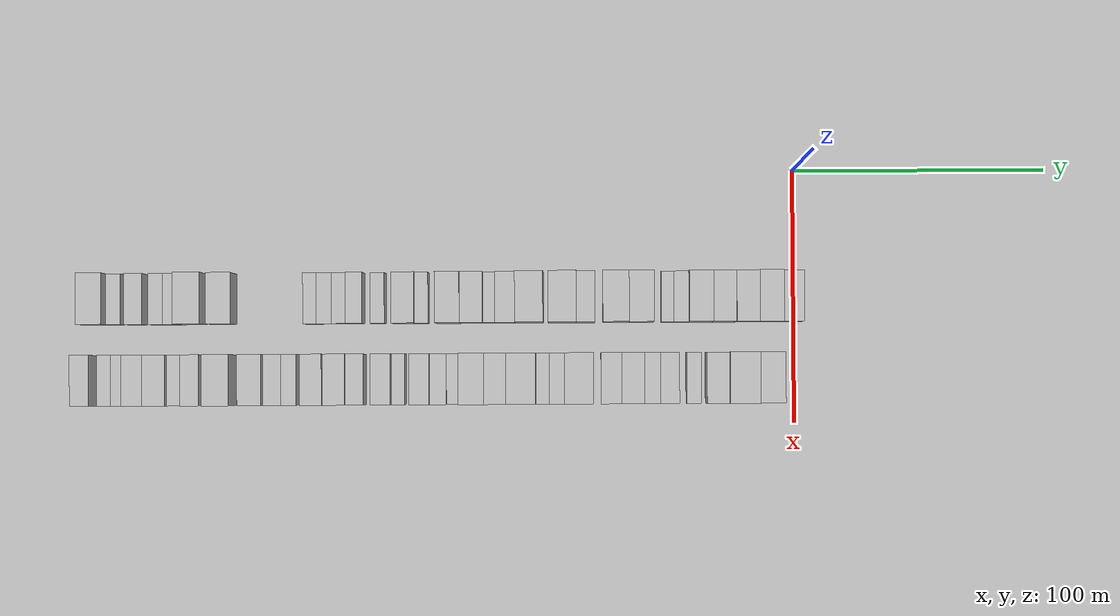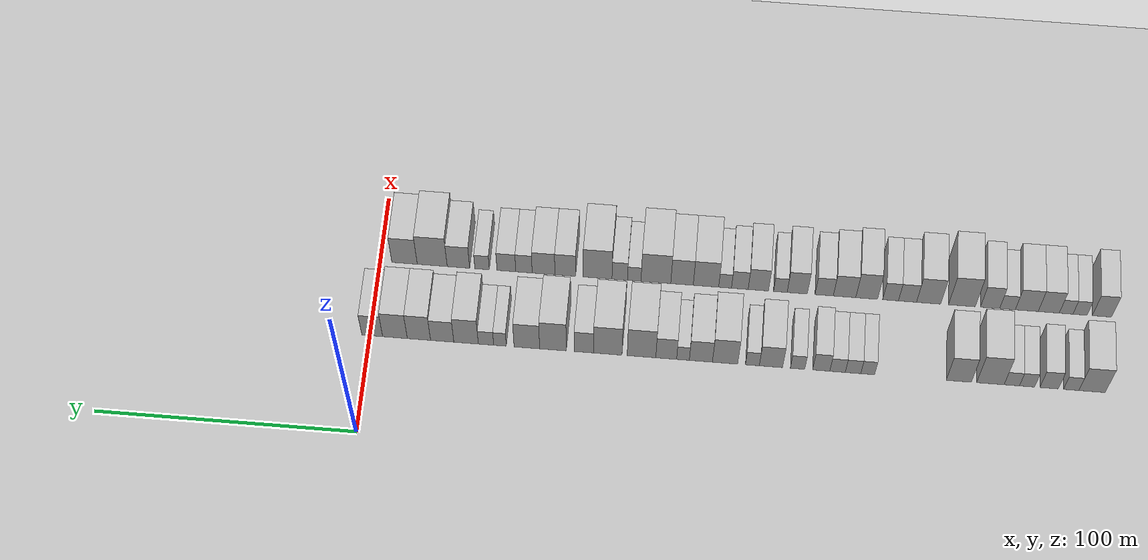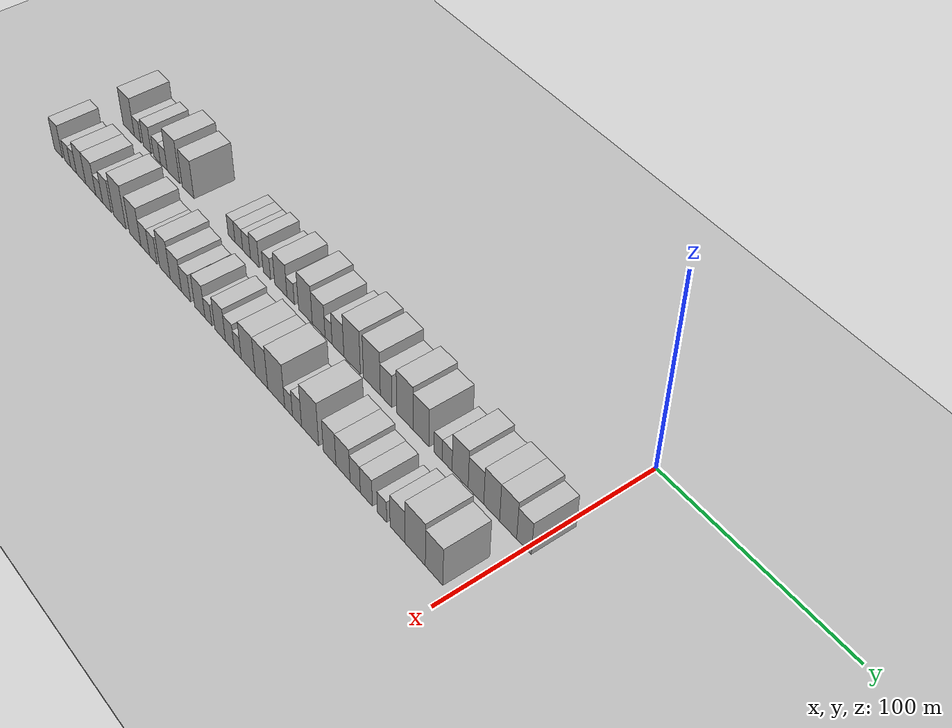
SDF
<sdf version="1.6">
 <world name="default">
  <include><name>ground_plane_1</name><uri>model://HANNAS_ground_plane</uri></include>
  <include>
   <name>ground_plane_2</name>
   <uri>model://HANNAS_ground_plane</uri>
   <pose>100 0 0  0 0 0</pose>
  </include>
  <model name="building_1">
   <static>1</static>
   <pose>50.0000 -276.0207 0 0.000000 0.000000 0.000000</pose>
   <link name="link">
    <pose>0 0 10.50 0 0 0</pose>
    <collision name="collision"><geometry><box><size>20.0000 9.9586 21.0000</size></box></geometry></collision>
    <visual name="visual">
     <cast_shadows>0</cast_shadows>
     <geometry><box><size>20.0000 9.9586 21.0000</size></box></geometry>
     <material>
      <script>
       <uri>model://HANNAS_wall/materials/scripts</uri>
       <uri>model://HANNAS_wall/materials/textures</uri>
       <name>vrc/HANNAS_wall</name>
      </script>
     </material>
    </visual>
   </link>
  </model>
  <model name="building_2">
   <static>1</static>
   <pose>50.0000 -268.1680 0 0.000000 0.000000 0.000000</pose>
   <link name="link">
    <pose>0 0 6.00 0 0 0</pose>
    <collision name="collision"><geometry><box><size>20.0000 5.7468 12.0000</size></box></geometry></collision>
    <visual name="visual">
     <cast_shadows>0</cast_shadows>
     <geometry><box><size>20.0000 5.7468 12.0000</size></box></geometry>
     <material>
      <script>
       <uri>model://HANNAS_wall/materials/scripts</uri>
       <uri>model://HANNAS_wall/materials/textures</uri>
       <name>vrc/HANNAS_wall</name>
      </script>
     </material>
    </visual>
   </link>
  </model>
  <model name="building_3">
   <static>1</static>
   <pose>50.0000 -259.8108 0 0.000000 0.000000 0.000000</pose>
   <link name="link">
    <pose>0 0 7.50 0 0 0</pose>
    <collision name="collision"><geometry><box><size>20.0000 6.9677 15.0000</size></box></geometry></collision>
    <visual name="visual">
     <cast_shadows>0</cast_shadows>
     <geometry><box><size>20.0000 6.9677 15.0000</size></box></geometry>
     <material>
      <script>
       <uri>model://HANNAS_wall/materials/scripts</uri>
       <uri>model://HANNAS_wall/materials/textures</uri>
       <name>vrc/HANNAS_wall</name>
      </script>
     </material>
    </visual>
   </link>
  </model>
  <model name="building_4">
   <static>1</static>
   <pose>50.0000 -251.4593 0 0.000000 0.000000 0.000000</pose>
   <link name="link">
    <pose>0 0 6.00 0 0 0</pose>
    <collision name="collision"><geometry><box><size>20.0000 5.7353 12.0000</size></box></geometry></collision>
    <visual name="visual">
     <cast_shadows>0</cast_shadows>
     <geometry><box><size>20.0000 5.7353 12.0000</size></box></geometry>
     <material>
      <script>
       <uri>model://HANNAS_wall/materials/scripts</uri>
       <uri>model://HANNAS_wall/materials/textures</uri>
       <name>vrc/HANNAS_wall</name>
      </script>
     </material>
    </visual>
   </link>
  </model>
  <model name="building_5">
   <static>1</static>
   <pose>50.0000 -245.6844 0 0.000000 0.000000 0.000000</pose>
   <link name="link">
    <pose>0 0 6.00 0 0 0</pose>
    <collision name="collision"><geometry><box><size>20.0000 5.8143 12.0000</size></box></geometry></collision>
    <visual name="visual">
     <cast_shadows>0</cast_shadows>
     <geometry><box><size>20.0000 5.8143 12.0000</size></box></geometry>
     <material>
      <script>
       <uri>model://HANNAS_wall/materials/scripts</uri>
       <uri>model://HANNAS_wall/materials/textures</uri>
       <name>vrc/HANNAS_wall</name>
      </script>
     </material>
    </visual>
   </link>
  </model>
  <model name="building_6">
   <static>1</static>
   <pose>50.0000 -237.5638 0 0.000000 0.000000 0.000000</pose>
   <link name="link">
    <pose>0 0 12.00 0 0 0</pose>
    <collision name="collision"><geometry><box><size>20.0000 10.4269 24.0000</size></box></geometry></collision>
    <visual name="visual">
     <cast_shadows>0</cast_shadows>
     <geometry><box><size>20.0000 10.4269 24.0000</size></box></geometry>
     <material>
      <script>
       <uri>model://HANNAS_wall/materials/scripts</uri>
       <uri>model://HANNAS_wall/materials/textures</uri>
       <name>vrc/HANNAS_wall</name>
      </script>
     </material>
    </visual>
   </link>
  </model>
  <model name="building_7">
   <static>1</static>
   <pose>50.0000 -225.5787 0 0.000000 0.000000 0.000000</pose>
   <link name="link">
    <pose>0 0 10.50 0 0 0</pose>
    <collision name="collision"><geometry><box><size>20.0000 9.5435 21.0000</size></box></geometry></collision>
    <visual name="visual">
     <cast_shadows>0</cast_shadows>
     <geometry><box><size>20.0000 9.5435 21.0000</size></box></geometry>
     <material>
      <script>
       <uri>model://HANNAS_wall/materials/scripts</uri>
       <uri>model://HANNAS_wall/materials/textures</uri>
       <name>vrc/HANNAS_wall</name>
      </script>
     </material>
    </visual>
   </link>
  </model>
  <model name="building_8">
   <static>1</static>
   <pose>50.0000 -190.9284 0 0.000000 0.000000 0.000000</pose>
   <link name="link">
    <pose>0 0 6.00 0 0 0</pose>
    <collision name="collision"><geometry><box><size>20.0000 5.2524 12.0000</size></box></geometry></collision>
    <visual name="visual">
     <cast_shadows>0</cast_shadows>
     <geometry><box><size>20.0000 5.2524 12.0000</size></box></geometry>
     <material>
      <script>
       <uri>model://HANNAS_wall/materials/scripts</uri>
       <uri>model://HANNAS_wall/materials/textures</uri>
       <name>vrc/HANNAS_wall</name>
      </script>
     </material>
    </visual>
   </link>
  </model>
  <model name="building_9">
   <static>1</static>
   <pose>50.0000 -185.3415 0 0.000000 0.000000 0.000000</pose>
   <link name="link">
    <pose>0 0 6.00 0 0 0</pose>
    <collision name="collision"><geometry><box><size>20.0000 5.9213 12.0000</size></box></geometry></collision>
    <visual name="visual">
     <cast_shadows>0</cast_shadows>
     <geometry><box><size>20.0000 5.9213 12.0000</size></box></geometry>
     <material>
      <script>
       <uri>model://HANNAS_wall/materials/scripts</uri>
       <uri>model://HANNAS_wall/materials/textures</uri>
       <name>vrc/HANNAS_wall</name>
      </script>
     </material>
    </visual>
   </link>
  </model>
  <model name="building_10">
   <static>1</static>
   <pose>50.0000 -179.4432 0 0.000000 0.000000 0.000000</pose>
   <link name="link">
    <pose>0 0 6.00 0 0 0</pose>
    <collision name="collision"><geometry><box><size>20.0000 5.8752 12.0000</size></box></geometry></collision>
    <visual name="visual">
     <cast_shadows>0</cast_shadows>
     <geometry><box><size>20.0000 5.8752 12.0000</size></box></geometry>
     <material>
      <script>
       <uri>model://HANNAS_wall/materials/scripts</uri>
       <uri>model://HANNAS_wall/materials/textures</uri>
       <name>vrc/HANNAS_wall</name>
      </script>
     </material>
    </visual>
   </link>
  </model>
  <model name="building_11">
   <static>1</static>
   <pose>50.0000 -173.2333 0 0.000000 0.000000 0.000000</pose>
   <link name="link">
    <pose>0 0 7.50 0 0 0</pose>
    <collision name="collision"><geometry><box><size>20.0000 6.5448 15.0000</size></box></geometry></collision>
    <visual name="visual">
     <cast_shadows>0</cast_shadows>
     <geometry><box><size>20.0000 6.5448 15.0000</size></box></geometry>
     <material>
      <script>
       <uri>model://HANNAS_wall/materials/scripts</uri>
       <uri>model://HANNAS_wall/materials/textures</uri>
       <name>vrc/HANNAS_wall</name>
      </script>
     </material>
    </visual>
   </link>
  </model>
  <model name="building_12">
   <static>1</static>
   <pose>50.0000 -164.2267 0 0.000000 0.000000 0.000000</pose>
   <link name="link">
    <pose>0 0 6.00 0 0 0</pose>
    <collision name="collision"><geometry><box><size>20.0000 5.4684 12.0000</size></box></geometry></collision>
    <visual name="visual">
     <cast_shadows>0</cast_shadows>
     <geometry><box><size>20.0000 5.4684 12.0000</size></box></geometry>
     <material>
      <script>
       <uri>model://HANNAS_wall/materials/scripts</uri>
       <uri>model://HANNAS_wall/materials/textures</uri>
       <name>vrc/HANNAS_wall</name>
      </script>
     </material>
    </visual>
   </link>
  </model>
  <model name="building_13">
   <static>1</static>
   <pose>50.0000 -154.0466 0 0.000000 0.000000 0.000000</pose>
   <link name="link">
    <pose>0 0 9.00 0 0 0</pose>
    <collision name="collision"><geometry><box><size>20.0000 8.8918 18.0000</size></box></geometry></collision>
    <visual name="visual">
     <cast_shadows>0</cast_shadows>
     <geometry><box><size>20.0000 8.8918 18.0000</size></box></geometry>
     <material>
      <script>
       <uri>model://HANNAS_wall/materials/scripts</uri>
       <uri>model://HANNAS_wall/materials/textures</uri>
       <name>vrc/HANNAS_wall</name>
      </script>
     </material>
    </visual>
   </link>
  </model>
  <model name="building_14">
   <static>1</static>
   <pose>50.0000 -146.9675 0 0.000000 0.000000 0.000000</pose>
   <link name="link">
    <pose>0 0 6.00 0 0 0</pose>
    <collision name="collision"><geometry><box><size>20.0000 5.2665 12.0000</size></box></geometry></collision>
    <visual name="visual">
     <cast_shadows>0</cast_shadows>
     <geometry><box><size>20.0000 5.2665 12.0000</size></box></geometry>
     <material>
      <script>
       <uri>model://HANNAS_wall/materials/scripts</uri>
       <uri>model://HANNAS_wall/materials/textures</uri>
       <name>vrc/HANNAS_wall</name>
      </script>
     </material>
    </visual>
   </link>
  </model>
  <model name="building_15">
   <static>1</static>
   <pose>50.0000 -136.4984 0 0.000000 0.000000 0.000000</pose>
   <link name="link">
    <pose>0 0 10.50 0 0 0</pose>
    <collision name="collision"><geometry><box><size>20.0000 9.6715 21.0000</size></box></geometry></collision>
    <visual name="visual">
     <cast_shadows>0</cast_shadows>
     <geometry><box><size>20.0000 9.6715 21.0000</size></box></geometry>
     <material>
      <script>
       <uri>model://HANNAS_wall/materials/scripts</uri>
       <uri>model://HANNAS_wall/materials/textures</uri>
       <name>vrc/HANNAS_wall</name>
      </script>
     </material>
    </visual>
   </link>
  </model>
  <model name="building_16">
   <static>1</static>
   <pose>50.0000 -127.2454 0 0.000000 0.000000 0.000000</pose>
   <link name="link">
    <pose>0 0 9.00 0 0 0</pose>
    <collision name="collision"><geometry><box><size>20.0000 8.8345 18.0000</size></box></geometry></collision>
    <visual name="visual">
     <cast_shadows>0</cast_shadows>
     <geometry><box><size>20.0000 8.8345 18.0000</size></box></geometry>
     <material>
      <script>
       <uri>model://HANNAS_wall/materials/scripts</uri>
       <uri>model://HANNAS_wall/materials/textures</uri>
       <name>vrc/HANNAS_wall</name>
      </script>
     </material>
    </visual>
   </link>
  </model>
  <model name="building_17">
   <static>1</static>
   <pose>50.0000 -120.4018 0 0.000000 0.000000 0.000000</pose>
   <link name="link">
    <pose>0 0 6.00 0 0 0</pose>
    <collision name="collision"><geometry><box><size>20.0000 4.8527 12.0000</size></box></geometry></collision>
    <visual name="visual">
     <cast_shadows>0</cast_shadows>
     <geometry><box><size>20.0000 4.8527 12.0000</size></box></geometry>
     <material>
      <script>
       <uri>model://HANNAS_wall/materials/scripts</uri>
       <uri>model://HANNAS_wall/materials/textures</uri>
       <name>vrc/HANNAS_wall</name>
      </script>
     </material>
    </visual>
   </link>
  </model>
  <model name="building_18">
   <static>1</static>
   <pose>50.0000 -113.9878 0 0.000000 0.000000 0.000000</pose>
   <link name="link">
    <pose>0 0 9.00 0 0 0</pose>
    <collision name="collision"><geometry><box><size>20.0000 7.9753 18.0000</size></box></geometry></collision>
    <visual name="visual">
     <cast_shadows>0</cast_shadows>
     <geometry><box><size>20.0000 7.9753 18.0000</size></box></geometry>
     <material>
      <script>
       <uri>model://HANNAS_wall/materials/scripts</uri>
       <uri>model://HANNAS_wall/materials/textures</uri>
       <name>vrc/HANNAS_wall</name>
      </script>
     </material>
    </visual>
   </link>
  </model>
  <model name="building_19">
   <static>1</static>
   <pose>50.0000 -104.5113 0 0.000000 0.000000 0.000000</pose>
   <link name="link">
    <pose>0 0 12.00 0 0 0</pose>
    <collision name="collision"><geometry><box><size>20.0000 10.9776 24.0000</size></box></geometry></collision>
    <visual name="visual">
     <cast_shadows>0</cast_shadows>
     <geometry><box><size>20.0000 10.9776 24.0000</size></box></geometry>
     <material>
      <script>
       <uri>model://HANNAS_wall/materials/scripts</uri>
       <uri>model://HANNAS_wall/materials/textures</uri>
       <name>vrc/HANNAS_wall</name>
      </script>
     </material>
    </visual>
   </link>
  </model>
  <model name="building_20">
   <static>1</static>
   <pose>50.0000 -91.5438 0 0.000000 0.000000 0.000000</pose>
   <link name="link">
    <pose>0 0 12.00 0 0 0</pose>
    <collision name="collision"><geometry><box><size>20.0000 10.9575 24.0000</size></box></geometry></collision>
    <visual name="visual">
     <cast_shadows>0</cast_shadows>
     <geometry><box><size>20.0000 10.9575 24.0000</size></box></geometry>
     <material>
      <script>
       <uri>model://HANNAS_wall/materials/scripts</uri>
       <uri>model://HANNAS_wall/materials/textures</uri>
       <name>vrc/HANNAS_wall</name>
      </script>
     </material>
    </visual>
   </link>
  </model>
  <model name="building_21">
   <static>1</static>
   <pose>50.0000 -82.3586 0 0.000000 0.000000 0.000000</pose>
   <link name="link">
    <pose>0 0 9.00 0 0 0</pose>
    <collision name="collision"><geometry><box><size>20.0000 7.4127 18.0000</size></box></geometry></collision>
    <visual name="visual">
     <cast_shadows>0</cast_shadows>
     <geometry><box><size>20.0000 7.4127 18.0000</size></box></geometry>
     <material>
      <script>
       <uri>model://HANNAS_wall/materials/scripts</uri>
       <uri>model://HANNAS_wall/materials/textures</uri>
       <name>vrc/HANNAS_wall</name>
      </script>
     </material>
    </visual>
   </link>
  </model>
  <model name="building_22">
   <static>1</static>
   <pose>50.0000 -70.5201 0 0.000000 0.000000 0.000000</pose>
   <link name="link">
    <pose>0 0 12.00 0 0 0</pose>
    <collision name="collision"><geometry><box><size>20.0000 10.2644 24.0000</size></box></geometry></collision>
    <visual name="visual">
     <cast_shadows>0</cast_shadows>
     <geometry><box><size>20.0000 10.2644 24.0000</size></box></geometry>
     <material>
      <script>
       <uri>model://HANNAS_wall/materials/scripts</uri>
       <uri>model://HANNAS_wall/materials/textures</uri>
       <name>vrc/HANNAS_wall</name>
      </script>
     </material>
    </visual>
   </link>
  </model>
  <model name="building_23">
   <static>1</static>
   <pose>50.0000 -60.4606 0 0.000000 0.000000 0.000000</pose>
   <link name="link">
    <pose>0 0 10.50 0 0 0</pose>
    <collision name="collision"><geometry><box><size>20.0000 9.8546 21.0000</size></box></geometry></collision>
    <visual name="visual">
     <cast_shadows>0</cast_shadows>
     <geometry><box><size>20.0000 9.8546 21.0000</size></box></geometry>
     <material>
      <script>
       <uri>model://HANNAS_wall/materials/scripts</uri>
       <uri>model://HANNAS_wall/materials/textures</uri>
       <name>vrc/HANNAS_wall</name>
      </script>
     </material>
    </visual>
   </link>
  </model>
  <model name="building_24">
   <static>1</static>
   <pose>50.0000 -50.1069 0 0.000000 0.000000 0.000000</pose>
   <link name="link">
    <pose>0 0 6.00 0 0 0</pose>
    <collision name="collision"><geometry><box><size>20.0000 4.8529 12.0000</size></box></geometry></collision>
    <visual name="visual">
     <cast_shadows>0</cast_shadows>
     <geometry><box><size>20.0000 4.8529 12.0000</size></box></geometry>
     <material>
      <script>
       <uri>model://HANNAS_wall/materials/scripts</uri>
       <uri>model://HANNAS_wall/materials/textures</uri>
       <name>vrc/HANNAS_wall</name>
      </script>
     </material>
    </visual>
   </link>
  </model>
  <model name="building_25">
   <static>1</static>
   <pose>50.0000 -44.7329 0 0.000000 0.000000 0.000000</pose>
   <link name="link">
    <pose>0 0 6.00 0 0 0</pose>
    <collision name="collision"><geometry><box><size>20.0000 5.8950 12.0000</size></box></geometry></collision>
    <visual name="visual">
     <cast_shadows>0</cast_shadows>
     <geometry><box><size>20.0000 5.8950 12.0000</size></box></geometry>
     <material>
      <script>
       <uri>model://HANNAS_wall/materials/scripts</uri>
       <uri>model://HANNAS_wall/materials/textures</uri>
       <name>vrc/HANNAS_wall</name>
      </script>
     </material>
    </visual>
   </link>
  </model>
  <model name="building_26">
   <static>1</static>
   <pose>50.0000 -37.0605 0 0.000000 0.000000 0.000000</pose>
   <link name="link">
    <pose>0 0 10.50 0 0 0</pose>
    <collision name="collision"><geometry><box><size>20.0000 9.4498 21.0000</size></box></geometry></collision>
    <visual name="visual">
     <cast_shadows>0</cast_shadows>
     <geometry><box><size>20.0000 9.4498 21.0000</size></box></geometry>
     <material>
      <script>
       <uri>model://HANNAS_wall/materials/scripts</uri>
       <uri>model://HANNAS_wall/materials/textures</uri>
       <name>vrc/HANNAS_wall</name>
      </script>
     </material>
    </visual>
   </link>
  </model>
  <model name="building_27">
   <static>1</static>
   <pose>50.0000 -27.8437 0 0.000000 0.000000 0.000000</pose>
   <link name="link">
    <pose>0 0 9.00 0 0 0</pose>
    <collision name="collision"><geometry><box><size>20.0000 8.9838 18.0000</size></box></geometry></collision>
    <visual name="visual">
     <cast_shadows>0</cast_shadows>
     <geometry><box><size>20.0000 8.9838 18.0000</size></box></geometry>
     <material>
      <script>
       <uri>model://HANNAS_wall/materials/scripts</uri>
       <uri>model://HANNAS_wall/materials/textures</uri>
       <name>vrc/HANNAS_wall</name>
      </script>
     </material>
    </visual>
   </link>
  </model>
  <model name="building_28">
   <static>1</static>
   <pose>50.0000 -18.8576 0 0.000000 0.000000 0.000000</pose>
   <link name="link">
    <pose>0 0 10.50 0 0 0</pose>
    <collision name="collision"><geometry><box><size>20.0000 8.9882 21.0000</size></box></geometry></collision>
    <visual name="visual">
     <cast_shadows>0</cast_shadows>
     <geometry><box><size>20.0000 8.9882 21.0000</size></box></geometry>
     <material>
      <script>
       <uri>model://HANNAS_wall/materials/scripts</uri>
       <uri>model://HANNAS_wall/materials/textures</uri>
       <name>vrc/HANNAS_wall</name>
      </script>
     </material>
    </visual>
   </link>
  </model>
  <model name="building_29">
   <static>1</static>
   <pose>50.0000 -9.6039 0 0.000000 0.000000 0.000000</pose>
   <link name="link">
    <pose>0 0 10.50 0 0 0</pose>
    <collision name="collision"><geometry><box><size>20.0000 9.5193 21.0000</size></box></geometry></collision>
    <visual name="visual">
     <cast_shadows>0</cast_shadows>
     <geometry><box><size>20.0000 9.5193 21.0000</size></box></geometry>
     <material>
      <script>
       <uri>model://HANNAS_wall/materials/scripts</uri>
       <uri>model://HANNAS_wall/materials/textures</uri>
       <name>vrc/HANNAS_wall</name>
      </script>
     </material>
    </visual>
   </link>
  </model>
  <model name="building_30">
   <static>1</static>
   <pose>50.0000 -0.8209 0 0.000000 0.000000 0.000000</pose>
   <link name="link">
    <pose>0 0 9.00 0 0 0</pose>
    <collision name="collision"><geometry><box><size>20.0000 8.0467 18.0000</size></box></geometry></collision>
    <visual name="visual">
     <cast_shadows>0</cast_shadows>
     <geometry><box><size>20.0000 8.0467 18.0000</size></box></geometry>
     <material>
      <script>
       <uri>model://HANNAS_wall/materials/scripts</uri>
       <uri>model://HANNAS_wall/materials/textures</uri>
       <name>vrc/HANNAS_wall</name>
      </script>
     </material>
    </visual>
   </link>
  </model>
  <model name="building_64">
   <static>1</static>
   <pose>82.0000 -280.2904 0 0.000000 0.000000 0.000000</pose>
   <link name="link">
    <pose>0 0 9.00 0 0 0</pose>
    <collision name="collision"><geometry><box><size>20.0000 7.4192 18.0000</size></box></geometry></collision>
    <visual name="visual">
     <cast_shadows>0</cast_shadows>
     <geometry><box><size>20.0000 7.4192 18.0000</size></box></geometry>
     <material>
      <script>
       <uri>model://HANNAS_wall/materials/scripts</uri>
       <uri>model://HANNAS_wall/materials/textures</uri>
       <name>vrc/HANNAS_wall</name>
      </script>
     </material>
    </visual>
   </link>
  </model>
  <model name="building_65">
   <static>1</static>
   <pose>82.0000 -271.8673 0 0.000000 0.000000 0.000000</pose>
   <link name="link">
    <pose>0 0 6.00 0 0 0</pose>
    <collision name="collision"><geometry><box><size>20.0000 5.4271 12.0000</size></box></geometry></collision>
    <visual name="visual">
     <cast_shadows>0</cast_shadows>
     <geometry><box><size>20.0000 5.4271 12.0000</size></box></geometry>
     <material>
      <script>
       <uri>model://HANNAS_wall/materials/scripts</uri>
       <uri>model://HANNAS_wall/materials/textures</uri>
       <name>vrc/HANNAS_wall</name>
      </script>
     </material>
    </visual>
   </link>
  </model>
  <model name="building_66">
   <static>1</static>
   <pose>82.0000 -266.5245 0 0.000000 0.000000 0.000000</pose>
   <link name="link">
    <pose>0 0 6.00 0 0 0</pose>
    <collision name="collision"><geometry><box><size>20.0000 5.2585 12.0000</size></box></geometry></collision>
    <visual name="visual">
     <cast_shadows>0</cast_shadows>
     <geometry><box><size>20.0000 5.2585 12.0000</size></box></geometry>
     <material>
      <script>
       <uri>model://HANNAS_wall/materials/scripts</uri>
       <uri>model://HANNAS_wall/materials/textures</uri>
       <name>vrc/HANNAS_wall</name>
      </script>
     </material>
    </visual>
   </link>
  </model>
  <model name="building_67">
   <static>1</static>
   <pose>82.0000 -259.8365 0 0.000000 0.000000 0.000000</pose>
   <link name="link">
    <pose>0 0 9.00 0 0 0</pose>
    <collision name="collision"><geometry><box><size>20.0000 8.1176 18.0000</size></box></geometry></collision>
    <visual name="visual">
     <cast_shadows>0</cast_shadows>
     <geometry><box><size>20.0000 8.1176 18.0000</size></box></geometry>
     <material>
      <script>
       <uri>model://HANNAS_wall/materials/scripts</uri>
       <uri>model://HANNAS_wall/materials/textures</uri>
       <name>vrc/HANNAS_wall</name>
      </script>
     </material>
    </visual>
   </link>
  </model>
  <model name="building_68">
   <static>1</static>
   <pose>82.0000 -251.3653 0 0.000000 0.000000 0.000000</pose>
   <link name="link">
    <pose>0 0 9.00 0 0 0</pose>
    <collision name="collision"><geometry><box><size>20.0000 8.8247 18.0000</size></box></geometry></collision>
    <visual name="visual">
     <cast_shadows>0</cast_shadows>
     <geometry><box><size>20.0000 8.8247 18.0000</size></box></geometry>
     <material>
      <script>
       <uri>model://HANNAS_wall/materials/scripts</uri>
       <uri>model://HANNAS_wall/materials/textures</uri>
       <name>vrc/HANNAS_wall</name>
      </script>
     </material>
    </visual>
   </link>
  </model>
  <model name="building_69">
   <static>1</static>
   <pose>82.0000 -243.9618 0 0.000000 0.000000 0.000000</pose>
   <link name="link">
    <pose>0 0 6.00 0 0 0</pose>
    <collision name="collision"><geometry><box><size>20.0000 5.9825 12.0000</size></box></geometry></collision>
    <visual name="visual">
     <cast_shadows>0</cast_shadows>
     <geometry><box><size>20.0000 5.9825 12.0000</size></box></geometry>
     <material>
      <script>
       <uri>model://HANNAS_wall/materials/scripts</uri>
       <uri>model://HANNAS_wall/materials/textures</uri>
       <name>vrc/HANNAS_wall</name>
      </script>
     </material>
    </visual>
   </link>
  </model>
  <model name="building_70">
   <static>1</static>
   <pose>82.0000 -237.2657 0 0.000000 0.000000 0.000000</pose>
   <link name="link">
    <pose>0 0 9.00 0 0 0</pose>
    <collision name="collision"><geometry><box><size>20.0000 7.4097 18.0000</size></box></geometry></collision>
    <visual name="visual">
     <cast_shadows>0</cast_shadows>
     <geometry><box><size>20.0000 7.4097 18.0000</size></box></geometry>
     <material>
      <script>
       <uri>model://HANNAS_wall/materials/scripts</uri>
       <uri>model://HANNAS_wall/materials/textures</uri>
       <name>vrc/HANNAS_wall</name>
      </script>
     </material>
    </visual>
   </link>
  </model>
  <model name="building_71">
   <static>1</static>
   <pose>82.0000 -226.4026 0 0.000000 0.000000 0.000000</pose>
   <link name="link">
    <pose>0 0 12.00 0 0 0</pose>
    <collision name="collision"><geometry><box><size>20.0000 10.3165 24.0000</size></box></geometry></collision>
    <visual name="visual">
     <cast_shadows>0</cast_shadows>
     <geometry><box><size>20.0000 10.3165 24.0000</size></box></geometry>
     <material>
      <script>
       <uri>model://HANNAS_wall/materials/scripts</uri>
       <uri>model://HANNAS_wall/materials/textures</uri>
       <name>vrc/HANNAS_wall</name>
      </script>
     </material>
    </visual>
   </link>
  </model>
  <model name="building_72">
   <static>1</static>
   <pose>82.0000 -213.5580 0 0.000000 0.000000 0.000000</pose>
   <link name="link">
    <pose>0 0 10.50 0 0 0</pose>
    <collision name="collision"><geometry><box><size>20.0000 9.3726 21.0000</size></box></geometry></collision>
    <visual name="visual">
     <cast_shadows>0</cast_shadows>
     <geometry><box><size>20.0000 9.3726 21.0000</size></box></geometry>
     <material>
      <script>
       <uri>model://HANNAS_wall/materials/scripts</uri>
       <uri>model://HANNAS_wall/materials/textures</uri>
       <name>vrc/HANNAS_wall</name>
      </script>
     </material>
    </visual>
   </link>
  </model>
  <model name="building_73">
   <static>1</static>
   <pose>82.0000 -205.3807 0 0.000000 0.000000 0.000000</pose>
   <link name="link">
    <pose>0 0 7.50 0 0 0</pose>
    <collision name="collision"><geometry><box><size>20.0000 6.9821 15.0000</size></box></geometry></collision>
    <visual name="visual">
     <cast_shadows>0</cast_shadows>
     <geometry><box><size>20.0000 6.9821 15.0000</size></box></geometry>
     <material>
      <script>
       <uri>model://HANNAS_wall/materials/scripts</uri>
       <uri>model://HANNAS_wall/materials/textures</uri>
       <name>vrc/HANNAS_wall</name>
      </script>
     </material>
    </visual>
   </link>
  </model>
  <model name="building_74">
   <static>1</static>
   <pose>82.0000 -198.8433 0 0.000000 0.000000 0.000000</pose>
   <link name="link">
    <pose>0 0 7.50 0 0 0</pose>
    <collision name="collision"><geometry><box><size>20.0000 6.0927 15.0000</size></box></geometry></collision>
    <visual name="visual">
     <cast_shadows>0</cast_shadows>
     <geometry><box><size>20.0000 6.0927 15.0000</size></box></geometry>
     <material>
      <script>
       <uri>model://HANNAS_wall/materials/scripts</uri>
       <uri>model://HANNAS_wall/materials/textures</uri>
       <name>vrc/HANNAS_wall</name>
      </script>
     </material>
    </visual>
   </link>
  </model>
  <model name="building_75">
   <static>1</static>
   <pose>82.0000 -189.5822 0 0.000000 0.000000 0.000000</pose>
   <link name="link">
    <pose>0 0 10.50 0 0 0</pose>
    <collision name="collision"><geometry><box><size>20.0000 8.4295 21.0000</size></box></geometry></collision>
    <visual name="visual">
     <cast_shadows>0</cast_shadows>
     <geometry><box><size>20.0000 8.4295 21.0000</size></box></geometry>
     <material>
      <script>
       <uri>model://HANNAS_wall/materials/scripts</uri>
       <uri>model://HANNAS_wall/materials/textures</uri>
       <name>vrc/HANNAS_wall</name>
      </script>
     </material>
    </visual>
   </link>
  </model>
  <model name="building_76">
   <static>1</static>
   <pose>82.0000 -181.0236 0 0.000000 0.000000 0.000000</pose>
   <link name="link">
    <pose>0 0 9.00 0 0 0</pose>
    <collision name="collision"><geometry><box><size>20.0000 8.6878 18.0000</size></box></geometry></collision>
    <visual name="visual">
     <cast_shadows>0</cast_shadows>
     <geometry><box><size>20.0000 8.6878 18.0000</size></box></geometry>
     <material>
      <script>
       <uri>model://HANNAS_wall/materials/scripts</uri>
       <uri>model://HANNAS_wall/materials/textures</uri>
       <name>vrc/HANNAS_wall</name>
      </script>
     </material>
    </visual>
   </link>
  </model>
  <model name="building_77">
   <static>1</static>
   <pose>82.0000 -173.1415 0 0.000000 0.000000 0.000000</pose>
   <link name="link">
    <pose>0 0 7.50 0 0 0</pose>
    <collision name="collision"><geometry><box><size>20.0000 7.0764 15.0000</size></box></geometry></collision>
    <visual name="visual">
     <cast_shadows>0</cast_shadows>
     <geometry><box><size>20.0000 7.0764 15.0000</size></box></geometry>
     <material>
      <script>
       <uri>model://HANNAS_wall/materials/scripts</uri>
       <uri>model://HANNAS_wall/materials/textures</uri>
       <name>vrc/HANNAS_wall</name>
      </script>
     </material>
    </visual>
   </link>
  </model>
  <model name="building_78">
   <static>1</static>
   <pose>82.0000 -162.6959 0 0.000000 0.000000 0.000000</pose>
   <link name="link">
    <pose>0 0 9.00 0 0 0</pose>
    <collision name="collision"><geometry><box><size>20.0000 7.8148 18.0000</size></box></geometry></collision>
    <visual name="visual">
     <cast_shadows>0</cast_shadows>
     <geometry><box><size>20.0000 7.8148 18.0000</size></box></geometry>
     <material>
      <script>
       <uri>model://HANNAS_wall/materials/scripts</uri>
       <uri>model://HANNAS_wall/materials/textures</uri>
       <name>vrc/HANNAS_wall</name>
      </script>
     </material>
    </visual>
   </link>
  </model>
  <model name="building_79">
   <static>1</static>
   <pose>82.0000 -156.1500 0 0.000000 0.000000 0.000000</pose>
   <link name="link">
    <pose>0 0 6.00 0 0 0</pose>
    <collision name="collision"><geometry><box><size>20.0000 5.2770 12.0000</size></box></geometry></collision>
    <visual name="visual">
     <cast_shadows>0</cast_shadows>
     <geometry><box><size>20.0000 5.2770 12.0000</size></box></geometry>
     <material>
      <script>
       <uri>model://HANNAS_wall/materials/scripts</uri>
       <uri>model://HANNAS_wall/materials/textures</uri>
       <name>vrc/HANNAS_wall</name>
      </script>
     </material>
    </visual>
   </link>
  </model>
  <model name="building_80">
   <static>1</static>
   <pose>82.0000 -147.5703 0 0.000000 0.000000 0.000000</pose>
   <link name="link">
    <pose>0 0 9.00 0 0 0</pose>
    <collision name="collision"><geometry><box><size>20.0000 7.8823 18.0000</size></box></geometry></collision>
    <visual name="visual">
     <cast_shadows>0</cast_shadows>
     <geometry><box><size>20.0000 7.8823 18.0000</size></box></geometry>
     <material>
      <script>
       <uri>model://HANNAS_wall/materials/scripts</uri>
       <uri>model://HANNAS_wall/materials/textures</uri>
       <name>vrc/HANNAS_wall</name>
      </script>
     </material>
    </visual>
   </link>
  </model>
  <model name="building_81">
   <static>1</static>
   <pose>82.0000 -140.3889 0 0.000000 0.000000 0.000000</pose>
   <link name="link">
    <pose>0 0 7.50 0 0 0</pose>
    <collision name="collision"><geometry><box><size>20.0000 6.4805 15.0000</size></box></geometry></collision>
    <visual name="visual">
     <cast_shadows>0</cast_shadows>
     <geometry><box><size>20.0000 6.4805 15.0000</size></box></geometry>
     <material>
      <script>
       <uri>model://HANNAS_wall/materials/scripts</uri>
       <uri>model://HANNAS_wall/materials/textures</uri>
       <name>vrc/HANNAS_wall</name>
      </script>
     </material>
    </visual>
   </link>
  </model>
  <model name="building_82">
   <static>1</static>
   <pose>82.0000 -134.6640 0 0.000000 0.000000 0.000000</pose>
   <link name="link">
    <pose>0 0 6.00 0 0 0</pose>
    <collision name="collision"><geometry><box><size>20.0000 4.9693 12.0000</size></box></geometry></collision>
    <visual name="visual">
     <cast_shadows>0</cast_shadows>
     <geometry><box><size>20.0000 4.9693 12.0000</size></box></geometry>
     <material>
      <script>
       <uri>model://HANNAS_wall/materials/scripts</uri>
       <uri>model://HANNAS_wall/materials/textures</uri>
       <name>vrc/HANNAS_wall</name>
      </script>
     </material>
    </visual>
   </link>
  </model>
  <model name="building_83">
   <static>1</static>
   <pose>82.0000 -127.2346 0 0.000000 0.000000 0.000000</pose>
   <link name="link">
    <pose>0 0 10.50 0 0 0</pose>
    <collision name="collision"><geometry><box><size>20.0000 9.8894 21.0000</size></box></geometry></collision>
    <visual name="visual">
     <cast_shadows>0</cast_shadows>
     <geometry><box><size>20.0000 9.8894 21.0000</size></box></geometry>
     <material>
      <script>
       <uri>model://HANNAS_wall/materials/scripts</uri>
       <uri>model://HANNAS_wall/materials/textures</uri>
       <name>vrc/HANNAS_wall</name>
      </script>
     </material>
    </visual>
   </link>
  </model>
  <model name="building_84">
   <static>1</static>
   <pose>82.0000 -117.9228 0 0.000000 0.000000 0.000000</pose>
   <link name="link">
    <pose>0 0 10.50 0 0 0</pose>
    <collision name="collision"><geometry><box><size>20.0000 8.7342 21.0000</size></box></geometry></collision>
    <visual name="visual">
     <cast_shadows>0</cast_shadows>
     <geometry><box><size>20.0000 8.7342 21.0000</size></box></geometry>
     <material>
      <script>
       <uri>model://HANNAS_wall/materials/scripts</uri>
       <uri>model://HANNAS_wall/materials/textures</uri>
       <name>vrc/HANNAS_wall</name>
      </script>
     </material>
    </visual>
   </link>
  </model>
  <model name="building_85">
   <static>1</static>
   <pose>82.0000 -107.7560 0 0.000000 0.000000 0.000000</pose>
   <link name="link">
    <pose>0 0 12.00 0 0 0</pose>
    <collision name="collision"><geometry><box><size>20.0000 11.5994 24.0000</size></box></geometry></collision>
    <visual name="visual">
     <cast_shadows>0</cast_shadows>
     <geometry><box><size>20.0000 11.5994 24.0000</size></box></geometry>
     <material>
      <script>
       <uri>model://HANNAS_wall/materials/scripts</uri>
       <uri>model://HANNAS_wall/materials/textures</uri>
       <name>vrc/HANNAS_wall</name>
      </script>
     </material>
    </visual>
   </link>
  </model>
  <model name="building_86">
   <static>1</static>
   <pose>82.0000 -99.3330 0 0.000000 0.000000 0.000000</pose>
   <link name="link">
    <pose>0 0 6.00 0 0 0</pose>
    <collision name="collision"><geometry><box><size>20.0000 5.2466 12.0000</size></box></geometry></collision>
    <visual name="visual">
     <cast_shadows>0</cast_shadows>
     <geometry><box><size>20.0000 5.2466 12.0000</size></box></geometry>
     <material>
      <script>
       <uri>model://HANNAS_wall/materials/scripts</uri>
       <uri>model://HANNAS_wall/materials/textures</uri>
       <name>vrc/HANNAS_wall</name>
      </script>
     </material>
    </visual>
   </link>
  </model>
  <model name="building_87">
   <static>1</static>
   <pose>82.0000 -93.6770 0 0.000000 0.000000 0.000000</pose>
   <link name="link">
    <pose>0 0 7.50 0 0 0</pose>
    <collision name="collision"><geometry><box><size>20.0000 6.0653 15.0000</size></box></geometry></collision>
    <visual name="visual">
     <cast_shadows>0</cast_shadows>
     <geometry><box><size>20.0000 6.0653 15.0000</size></box></geometry>
     <material>
      <script>
       <uri>model://HANNAS_wall/materials/scripts</uri>
       <uri>model://HANNAS_wall/materials/textures</uri>
       <name>vrc/HANNAS_wall</name>
      </script>
     </material>
    </visual>
   </link>
  </model>
  <model name="building_88">
   <static>1</static>
   <pose>82.0000 -85.0400 0 0.000000 0.000000 0.000000</pose>
   <link name="link">
    <pose>0 0 12.00 0 0 0</pose>
    <collision name="collision"><geometry><box><size>20.0000 11.2087 24.0000</size></box></geometry></collision>
    <visual name="visual">
     <cast_shadows>0</cast_shadows>
     <geometry><box><size>20.0000 11.2087 24.0000</size></box></geometry>
     <material>
      <script>
       <uri>model://HANNAS_wall/materials/scripts</uri>
       <uri>model://HANNAS_wall/materials/textures</uri>
       <name>vrc/HANNAS_wall</name>
      </script>
     </material>
    </visual>
   </link>
  </model>
  <model name="building_89">
   <static>1</static>
   <pose>82.0000 -72.3990 0 0.000000 0.000000 0.000000</pose>
   <link name="link">
    <pose>0 0 9.00 0 0 0</pose>
    <collision name="collision"><geometry><box><size>20.0000 8.0733 18.0000</size></box></geometry></collision>
    <visual name="visual">
     <cast_shadows>0</cast_shadows>
     <geometry><box><size>20.0000 8.0733 18.0000</size></box></geometry>
     <material>
      <script>
       <uri>model://HANNAS_wall/materials/scripts</uri>
       <uri>model://HANNAS_wall/materials/textures</uri>
       <name>vrc/HANNAS_wall</name>
      </script>
     </material>
    </visual>
   </link>
  </model>
  <model name="building_90">
   <static>1</static>
   <pose>82.0000 -63.9144 0 0.000000 0.000000 0.000000</pose>
   <link name="link">
    <pose>0 0 9.00 0 0 0</pose>
    <collision name="collision"><geometry><box><size>20.0000 8.8960 18.0000</size></box></geometry></collision>
    <visual name="visual">
     <cast_shadows>0</cast_shadows>
     <geometry><box><size>20.0000 8.8960 18.0000</size></box></geometry>
     <material>
      <script>
       <uri>model://HANNAS_wall/materials/scripts</uri>
       <uri>model://HANNAS_wall/materials/textures</uri>
       <name>vrc/HANNAS_wall</name>
      </script>
     </material>
    </visual>
   </link>
  </model>
  <model name="building_91">
   <static>1</static>
   <pose>82.0000 -56.2699 0 0.000000 0.000000 0.000000</pose>
   <link name="link">
    <pose>0 0 7.50 0 0 0</pose>
    <collision name="collision"><geometry><box><size>20.0000 6.3929 15.0000</size></box></geometry></collision>
    <visual name="visual">
     <cast_shadows>0</cast_shadows>
     <geometry><box><size>20.0000 6.3929 15.0000</size></box></geometry>
     <material>
      <script>
       <uri>model://HANNAS_wall/materials/scripts</uri>
       <uri>model://HANNAS_wall/materials/textures</uri>
       <name>vrc/HANNAS_wall</name>
      </script>
     </material>
    </visual>
   </link>
  </model>
  <model name="building_92">
   <static>1</static>
   <pose>82.0000 -49.3878 0 0.000000 0.000000 0.000000</pose>
   <link name="link">
    <pose>0 0 7.50 0 0 0</pose>
    <collision name="collision"><geometry><box><size>20.0000 7.3713 15.0000</size></box></geometry></collision>
    <visual name="visual">
     <cast_shadows>0</cast_shadows>
     <geometry><box><size>20.0000 7.3713 15.0000</size></box></geometry>
     <material>
      <script>
       <uri>model://HANNAS_wall/materials/scripts</uri>
       <uri>model://HANNAS_wall/materials/textures</uri>
       <name>vrc/HANNAS_wall</name>
      </script>
     </material>
    </visual>
   </link>
  </model>
  <model name="building_93">
   <static>1</static>
   <pose>82.0000 -39.8632 0 0.000000 0.000000 0.000000</pose>
   <link name="link">
    <pose>0 0 6.00 0 0 0</pose>
    <collision name="collision"><geometry><box><size>20.0000 5.6779 12.0000</size></box></geometry></collision>
    <visual name="visual">
     <cast_shadows>0</cast_shadows>
     <geometry><box><size>20.0000 5.6779 12.0000</size></box></geometry>
     <material>
      <script>
       <uri>model://HANNAS_wall/materials/scripts</uri>
       <uri>model://HANNAS_wall/materials/textures</uri>
       <name>vrc/HANNAS_wall</name>
      </script>
     </material>
    </visual>
   </link>
  </model>
  <model name="building_94">
   <static>1</static>
   <pose>82.0000 -30.6163 0 0.000000 0.000000 0.000000</pose>
   <link name="link">
    <pose>0 0 9.00 0 0 0</pose>
    <collision name="collision"><geometry><box><size>20.0000 8.8159 18.0000</size></box></geometry></collision>
    <visual name="visual">
     <cast_shadows>0</cast_shadows>
     <geometry><box><size>20.0000 8.8159 18.0000</size></box></geometry>
     <material>
      <script>
       <uri>model://HANNAS_wall/materials/scripts</uri>
       <uri>model://HANNAS_wall/materials/textures</uri>
       <name>vrc/HANNAS_wall</name>
      </script>
     </material>
    </visual>
   </link>
  </model>
  <model name="building_95">
   <static>1</static>
   <pose>82.0000 -20.3291 0 0.000000 0.000000 0.000000</pose>
   <link name="link">
    <pose>0 0 12.00 0 0 0</pose>
    <collision name="collision"><geometry><box><size>20.0000 11.7586 24.0000</size></box></geometry></collision>
    <visual name="visual">
     <cast_shadows>0</cast_shadows>
     <geometry><box><size>20.0000 11.7586 24.0000</size></box></geometry>
     <material>
      <script>
       <uri>model://HANNAS_wall/materials/scripts</uri>
       <uri>model://HANNAS_wall/materials/textures</uri>
       <name>vrc/HANNAS_wall</name>
      </script>
     </material>
    </visual>
   </link>
  </model>
  <model name="building_96">
   <static>1</static>
   <pose>82.0000 -9.4634 0 0.000000 0.000000 0.000000</pose>
   <link name="link">
    <pose>0 0 10.50 0 0 0</pose>
    <collision name="collision"><geometry><box><size>20.0000 9.9728 21.0000</size></box></geometry></collision>
    <visual name="visual">
     <cast_shadows>0</cast_shadows>
     <geometry><box><size>20.0000 9.9728 21.0000</size></box></geometry>
     <material>
      <script>
       <uri>model://HANNAS_wall/materials/scripts</uri>
       <uri>model://HANNAS_wall/materials/textures</uri>
       <name>vrc/HANNAS_wall</name>
      </script>
     </material>
    </visual>
   </link>
  </model>
 </world>
</sdf>
